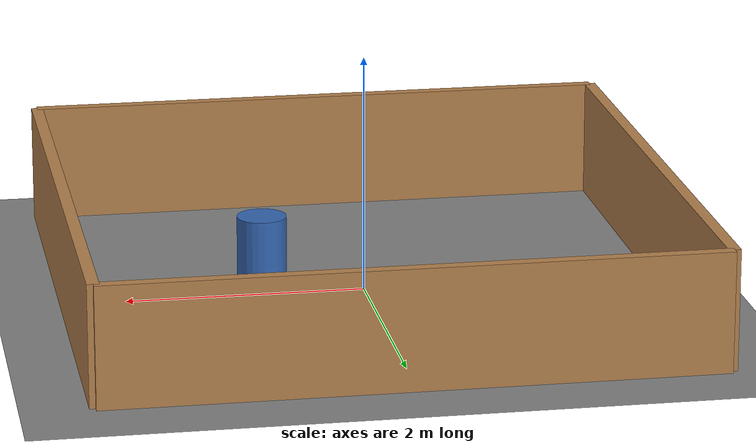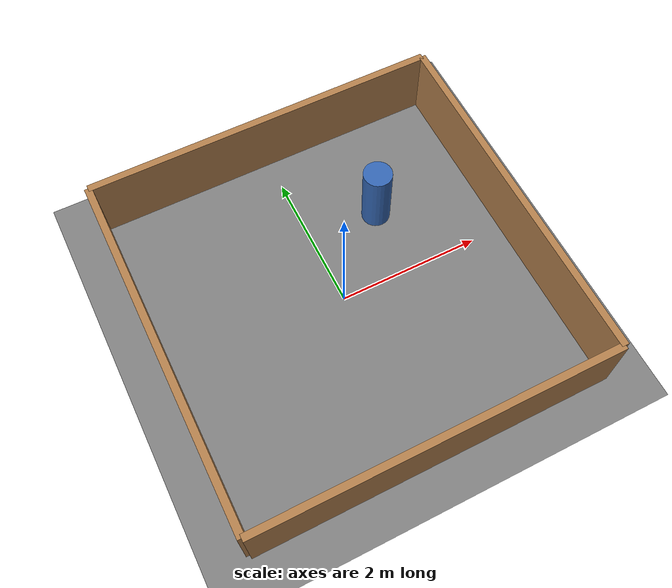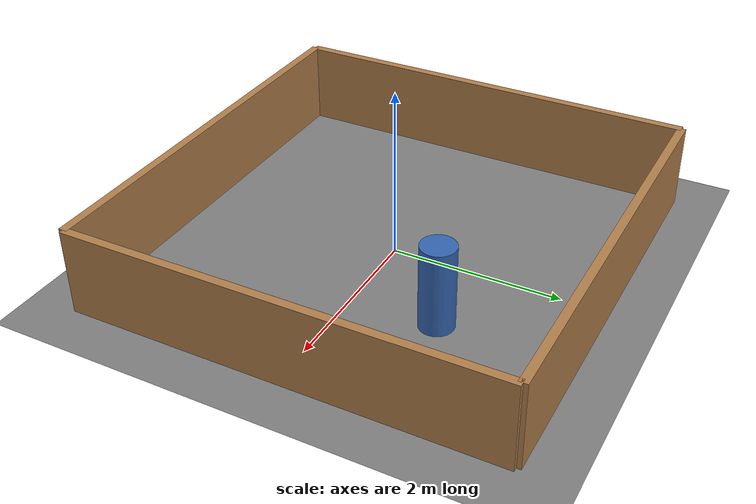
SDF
<?xml version="1.0"?>
<sdf version="1.10">
  <world name="room">

    <!-- ===== 필수 시스템 플러그인 ===== -->
    <plugin filename="gz-sim-physics-system"
            name="gz::sim::systems::Physics"/>
    <plugin filename="gz-sim-user-commands-system"
            name="gz::sim::systems::UserCommands"/>
    <plugin filename="gz-sim-scene-broadcaster-system"
            name="gz::sim::systems::SceneBroadcaster"/>
    <plugin filename="gz-sim-sensors-system"
            name="gz::sim::systems::Sensors">
      <render_engine>ogre2</render_engine>
    </plugin>
    <plugin filename="gz-sim-imu-system"
            name="gz::sim::systems::Imu"/>

    <!-- ===== 광원 ===== -->
    <light type="directional" name="sun">
      <cast_shadows>false</cast_shadows>
      <pose>0 0 10 0 0 0</pose>
      <diffuse>0.8 0.8 0.8 1</diffuse>
      <direction>-0.5 0.1 -0.9</direction>
    </light>

    <!-- ===== 바닥 ===== -->
    <model name="ground">
      <static>true</static>
      <link name="link">
        <collision name="c">
          <geometry><plane><normal>0 0 1</normal><size>20 20</size></plane></geometry>
        </collision>
        <visual name="v">
          <geometry><plane><normal>0 0 1</normal><size>20 20</size></plane></geometry>
          <material><ambient>0.3 0.3 0.3 1</ambient><diffuse>0.5 0.5 0.5 1</diffuse></material>
        </visual>
      </link>
    </model>

    <!-- 북쪽 -->
    <model name="wall_n">
      <static>true</static>
      <pose>0 2.5 0.5 0 0 0</pose>
      <link name="link">
        <collision name="c"><geometry><box><size>5 0.1 1</size></box></geometry></collision>
        <visual name="v">
          <geometry><box><size>5 0.1 1</size></box></geometry>
          <material><ambient>0.7 0.5 0.3 1</ambient><diffuse>0.7 0.5 0.3 1</diffuse></material>
        </visual>
      </link>
    </model>

    <!-- 남쪽 -->
    <model name="wall_s">
      <static>true</static>
      <pose>0 -2.5 0.5 0 0 0</pose>
      <link name="link">
        <collision name="c"><geometry><box><size>5 0.1 1</size></box></geometry></collision>
        <visual name="v">
          <geometry><box><size>5 0.1 1</size></box></geometry>
          <material><ambient>0.7 0.5 0.3 1</ambient><diffuse>0.7 0.5 0.3 1</diffuse></material>
        </visual>
      </link>
    </model>

    <!-- 동쪽 -->
    <model name="wall_e">
      <static>true</static>
      <pose>2.5 0 0.5 0 0 1.5708</pose>
      <link name="link">
        <collision name="c"><geometry><box><size>5 0.1 1</size></box></geometry></collision>
        <visual name="v">
          <geometry><box><size>5 0.1 1</size></box></geometry>
          <material><ambient>0.7 0.5 0.3 1</ambient><diffuse>0.7 0.5 0.3 1</diffuse></material>
        </visual>
      </link>
    </model>

    <!-- 서쪽 -->
    <model name="wall_w">
      <static>true</static>
      <pose>-2.5 0 0.5 0 0 1.5708</pose>
      <link name="link">
        <collision name="c"><geometry><box><size>5 0.1 1</size></box></geometry></collision>
        <visual name="v">
          <geometry><box><size>5 0.1 1</size></box></geometry>
          <material><ambient>0.7 0.5 0.3 1</ambient><diffuse>0.7 0.5 0.3 1</diffuse></material>
        </visual>
      </link>
    </model>

    <!-- 가운데 장애물 (SLAM 재미용) -->
    <model name="pillar">
      <static>true</static>
      <pose>1 1 0.5 0 0 0</pose>
      <link name="link">
        <collision name="c"><geometry><cylinder><radius>0.2</radius><length>1</length></cylinder></geometry></collision>
        <visual name="v">
          <geometry><cylinder><radius>0.2</radius><length>1</length></cylinder></geometry>
          <material><ambient>0.2 0.4 0.7 1</ambient><diffuse>0.2 0.4 0.7 1</diffuse></material>
        </visual>
      </link>
    </model>

  </world>
</sdf>
